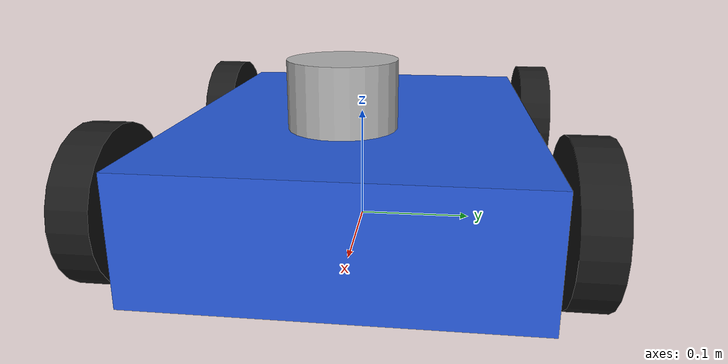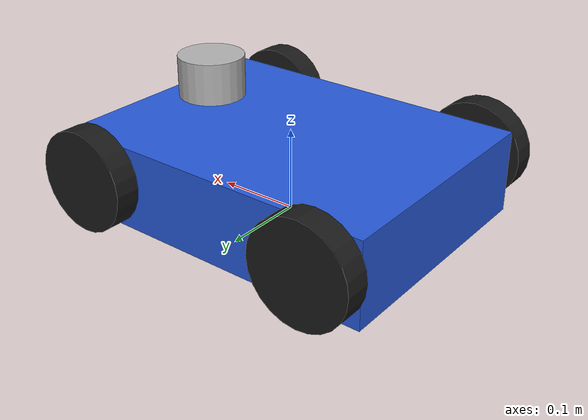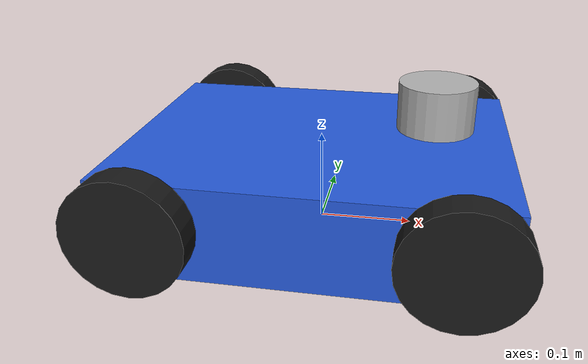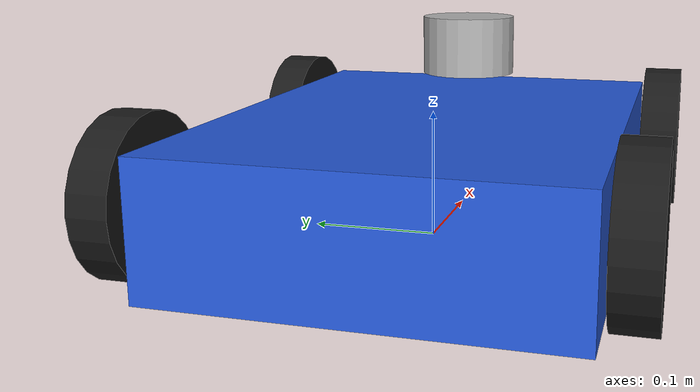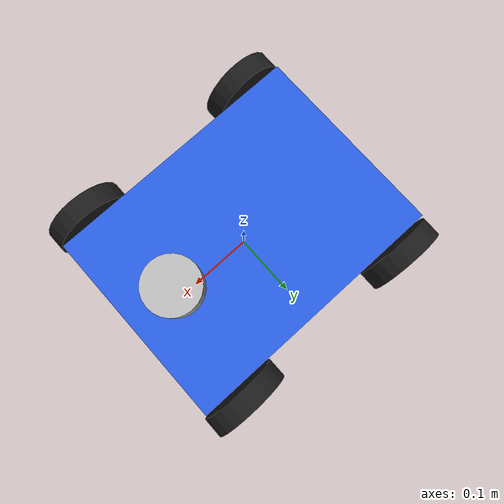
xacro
<?xml version="1.0"?>

<robot xmlns:xacro="http://www.ros.org/wiki/xacro"
       name="autonomous_car">

  <xacro:include filename="$(find autonomous_car)/description/materials.xacro"/>

  <xacro:include filename="$(find autonomous_car)/description/robot_core.xacro"/>

  <xacro:include filename="$(find autonomous_car)/description/wheels.xacro"/>

  <xacro:include filename="$(find autonomous_car)/description/lidar.xacro"/>

  <xacro:include filename="$(find autonomous_car)/description/ros2_control.xacro"/>

  <xacro:include filename="$(find autonomous_car)/description/gazebo.xacro"/>

</robot>

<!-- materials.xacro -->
<robot xmlns:xacro="http://www.ros.org/wiki/xacro">

  <material name="black">
    <color rgba="0.1 0.1 0.1 1"/>
  </material>

  <material name="grey">
    <color rgba="0.7 0.7 0.7 1"/>
  </material>

  <material name="blue">
    <color rgba="0.15 0.35 0.85 1"/>
  </material>

  <material name="red">
    <color rgba="0.9 0.1 0.1 1"/>
  </material>

  <material name="green">
    <color rgba="0.1 0.8 0.1 1"/>
  </material>

</robot>

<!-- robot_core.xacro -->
<robot xmlns:xacro="http://www.ros.org/wiki/xacro">

  <!-- Robot dimensions -->
  <xacro:property name="body_length" value="0.40"/>
  <xacro:property name="body_width"  value="0.30"/>
  <xacro:property name="body_height" value="0.10"/>

  <!-- Base footprint -->
  <link name="base_footprint"/>

  <!-- Chassis -->
  <link name="base_link">

    <visual>
      <origin xyz="0 0 ${body_height/2}" rpy="0 0 0"/>
      <geometry>
        <box size="${body_length} ${body_width} ${body_height}"/>
      </geometry>
      <material name="blue"/>
    </visual>

    <collision>
      <origin xyz="0 0 ${body_height/2}" rpy="0 0 0"/>
      <geometry>
        <box size="${body_length} ${body_width} ${body_height}"/>
      </geometry>
    </collision>

    <inertial>
      <origin xyz="0 0 ${body_height/2}"/>
      <mass value="8.0"/>

      <inertia
          ixx="0.08"
          ixy="0"
          ixz="0"
          iyy="0.12"
          iyz="0"
          izz="0.15"/>
    </inertial>

  </link>

  <!-- Fixed joint -->
  <joint name="base_joint" type="fixed">
      <parent link="base_footprint"/>
      <child link="base_link"/>
      <origin xyz="0 0 0"/>
  </joint>

</robot>

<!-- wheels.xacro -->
<robot xmlns:xacro="http://www.ros.org/wiki/xacro">

  <!-- Wheel dimensions -->
  <xacro:property name="wheel_radius" value="0.06"/>
  <xacro:property name="wheel_width" value="0.03"/>

  <!-- Wheel macro -->
  <xacro:macro name="wheel" params="name x y">

    <link name="${name}_wheel">

      <visual>
        <origin xyz="0 0 0" rpy="1.5708 0 0"/>
        <geometry>
          <cylinder radius="${wheel_radius}"
                    length="${wheel_width}"/>
        </geometry>
        <material name="black"/>
      </visual>

      <collision>
        <origin xyz="0 0 0" rpy="1.5708 0 0"/>
        <geometry>
          <cylinder radius="${wheel_radius}"
                    length="${wheel_width}"/>
        </geometry>
      </collision>

      <inertial>
        <mass value="0.5"/>

        <origin xyz="0 0 0"/>

        <inertia
            ixx="0.001"
            ixy="0"
            ixz="0"
            iyy="0.001"
            iyz="0"
            izz="0.001"/>
      </inertial>

    </link>

    <joint name="${name}_wheel_joint" type="continuous">

      <parent link="base_link"/>

      <child link="${name}_wheel"/>

      <!-- Wheel center -->
      <origin xyz="${x} ${y} 0.06"/>

      <!-- Wheel rotates about Y -->
      <axis xyz="0 1 0"/>

      <dynamics damping="0.1" friction="0.1"/>

    </joint>

  </xacro:macro>

  <!-- Front -->
  <xacro:wheel name="front_left"  x="0.15"  y="0.17"/>
  <xacro:wheel name="front_right" x="0.15"  y="-0.17"/>

  <!-- Rear -->
  <xacro:wheel name="rear_left"   x="-0.15" y="0.17"/>
  <xacro:wheel name="rear_right"  x="-0.15" y="-0.17"/>

</robot>

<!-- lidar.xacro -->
<robot xmlns:xacro="http://www.ros.org/wiki/xacro">

  <!-- LiDAR -->

  <link name="lidar_link">

    <visual>
      <geometry>
        <cylinder radius="0.04" length="0.05"/>
      </geometry>

      <material name="grey"/>
    </visual>

    <collision>
      <geometry>
        <cylinder radius="0.04" length="0.05"/>
      </geometry>
    </collision>

    <inertial>
      <mass value="0.2"/>

      <origin xyz="0 0 0"/>

      <inertia
        ixx="0.0001"
        iyy="0.0001"
        izz="0.0001"
        ixy="0"
        ixz="0"
        iyz="0"/>
    </inertial>

  </link>

  <joint name="lidar_joint" type="fixed">

    <parent link="base_link"/>

    <child link="lidar_link"/>

    <origin xyz="0.12 0 0.14"/>

  </joint>

</robot>
